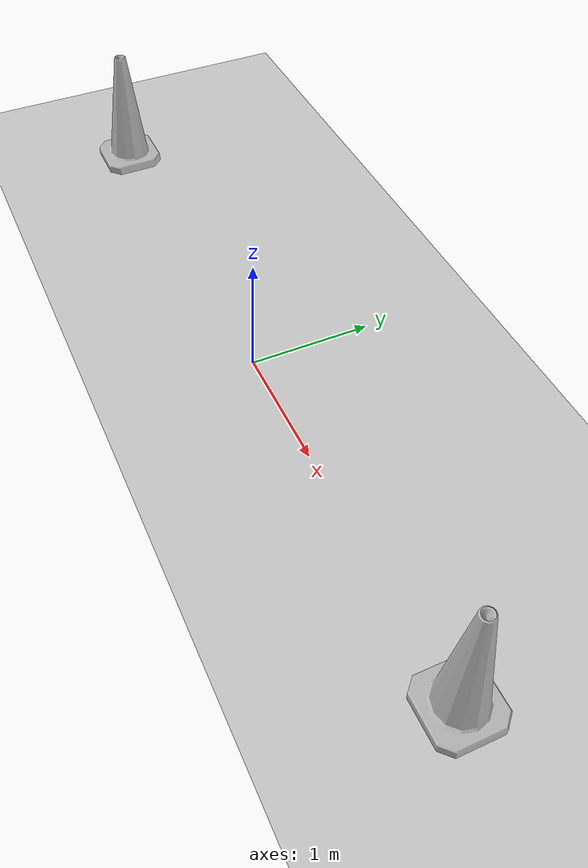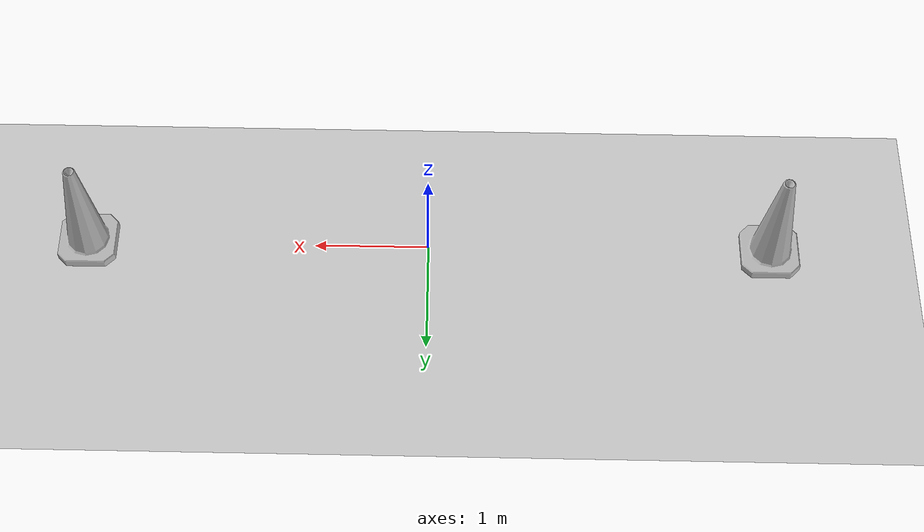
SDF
<?xml version="1.0" ?>
<sdf version="1.4">
    <world name="default">
        <include>
            <uri>model://ground_plane</uri>
        </include>
        <include>
            <uri>model://sun</uri>
        </include>
        <include>
            <uri>model://construction_cone</uri>
            <name>construction_cone</name>
            <pose>-3.0 0 0 0 0 0</pose>
        </include>
        <include>
            <uri>model://construction_cone</uri>
            <name>construction_cone2</name>
            <pose>3.0 0 0 0 0 0</pose>
        </include>
    </world>
</sdf>

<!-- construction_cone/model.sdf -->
<sdf version="1.5">
  <model name="Construction Cone">
    <link name="link">
      <collision name="collision">
        <geometry>
          <mesh>
            <scale>10 10 10</scale>
            <uri>file://isr-testbed/construction_cone/meshes/construction_cone.dae</uri>
          </mesh>
        </geometry>
      </collision>
      <visual name="visual">
        <geometry>
          <mesh>
            <scale>10 10 10</scale>
            <uri>file://isr-testbed/construction_cone/meshes/construction_cone.dae</uri>
          </mesh>
        </geometry>
      </visual>
    </link>
  </model>
</sdf>
